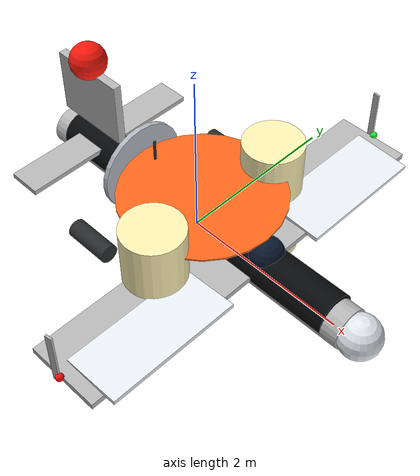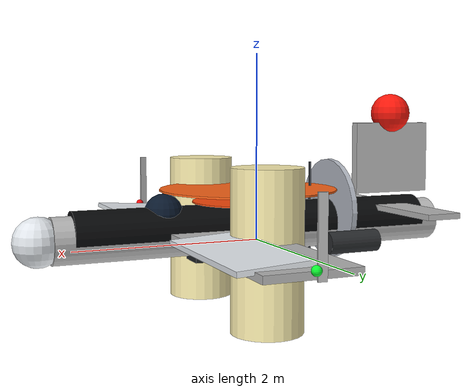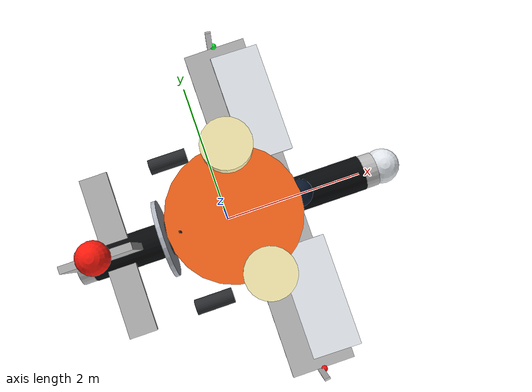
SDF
<?xml version="1.0"?>
<sdf version="1.7">

  <model name="target_marker">
    <static>false</static>
    <allow_auto_disable>false</allow_auto_disable>

    <link name="aircraft">

      <gravity>false</gravity>
      <kinematic>true</kinematic>
      <self_collide>false</self_collide>

      <!-- ============================================================
           FUSELAGE + NOSE
           ============================================================ -->
      <visual name="fuselage">
        <pose>0 0 0.12 0 1.570796 0</pose>
        <geometry><cylinder><radius>0.24</radius><length>4.4</length></cylinder></geometry>
        <material>
          <ambient>__RED__ __GREEN__ __BLUE__ 1</ambient>
          <diffuse>__RED__ __GREEN__ __BLUE__ 1</diffuse>
          <specular>0.75 0.75 0.75 1</specular>
        </material>
      </visual>

      <!-- Skin stripe along the upper fuselage -->
      <visual name="fuselage_stripe">
        <pose>0 0 0.16 0 1.570796 0</pose>
        <geometry><cylinder><radius>0.248</radius><length>4.0</length></cylinder></geometry>
        <material>
          <ambient>0.1 0.12 0.14 1</ambient>
          <diffuse>0.03 0.035 0.04 1</diffuse>
          <specular>0.5 0.5 0.5 1</specular>
        </material>
      </visual>

      <visual name="nose">
        <pose>2.32 0 0.12 0 0 0</pose>
        <geometry><sphere><radius>0.25</radius></sphere></geometry>
        <material>
          <ambient>0.78 0.8 0.82 1</ambient>
          <diffuse>0.9 0.92 0.94 1</diffuse>
          <specular>0.9 0.9 0.9 1</specular>
        </material>
      </visual>

      <!-- Cockpit canopy -->
      <visual name="canopy">
        <pose>1.05 0 0.34 0 0 0</pose>
        <geometry><sphere><radius>0.2</radius></sphere></geometry>
        <material>
          <ambient>0.03 0.07 0.12 1</ambient>
          <diffuse>0.04 0.1 0.18 1</diffuse>
          <specular>0.95 0.95 1 1</specular>
        </material>
      </visual>

      <!-- ============================================================
           MAIN WING
           ============================================================ -->
      <visual name="main_wing">
        <pose>0.6 0 0.12 0 0 0</pose>
        <geometry><box><size>0.9 4.8 0.07</size></box></geometry>
        <material>
          <ambient>__RED__ __GREEN__ __BLUE__ 1</ambient>
          <diffuse>__RED__ __GREEN__ __BLUE__ 1</diffuse>
          <specular>0.5 0.5 0.5 1</specular>
        </material>
      </visual>

      <!-- Leading-edge sweep highlight -->
      <visual name="sweep_left">
        <pose>0.85 1.45 0.165 0 0.06 0</pose>
        <geometry><box><size>0.7 1.6 0.05</size></box></geometry>
        <material>
          <ambient>0.85 0.87 0.9 1</ambient>
          <diffuse>0.92 0.94 0.96 1</diffuse>
        </material>
      </visual>
      <visual name="sweep_right">
        <pose>0.85 -1.45 0.165 0 -0.06 0</pose>
        <geometry><box><size>0.7 1.6 0.05</size></box></geometry>
        <material>
          <ambient>0.85 0.87 0.9 1</ambient>
          <diffuse>0.92 0.94 0.96 1</diffuse>
        </material>
      </visual>

      <!-- Winglets -->
      <visual name="winglet_left">
        <pose>0.55 2.42 0.42 0 0 -0.15</pose>
        <geometry><box><size>0.08 0.025 0.7</size></box></geometry>
        <material>
          <ambient>__RED__ __GREEN__ __BLUE__ 1</ambient>
          <diffuse>__RED__ __GREEN__ __BLUE__ 1</diffuse>
        </material>
      </visual>
      <visual name="winglet_right">
        <pose>0.55 -2.42 0.42 0 0 0.15</pose>
        <geometry><box><size>0.08 0.025 0.7</size></box></geometry>
        <material>
          <ambient>__RED__ __GREEN__ __BLUE__ 1</ambient>
          <diffuse>__RED__ __GREEN__ __BLUE__ 1</diffuse>
        </material>
      </visual>

      <!-- Wing nav beacons -->
      <visual name="wing_nav_left">
        <pose>0.6 2.42 0.16 0 0 0</pose>
        <geometry><sphere><radius>0.045</radius></sphere></geometry>
        <material>
          <ambient>0.05 1 0.2 1</ambient>
          <diffuse>0.05 1 0.2 1</diffuse>
          <emissive>0.05 0.8 0.15 1</emissive>
        </material>
      </visual>
      <visual name="wing_nav_right">
        <pose>0.6 -2.42 0.16 0 0 0</pose>
        <geometry><sphere><radius>0.045</radius></sphere></geometry>
        <material>
          <ambient>1 0.05 0.05 1</ambient>
          <diffuse>1 0.05 0.05 1</diffuse>
          <emissive>0.85 0.02 0.02 1</emissive>
        </material>
      </visual>

      <!-- ============================================================
           EMPENNAGE (tail)
           ============================================================ -->
      <visual name="tailplane">
        <pose>-1.6 0 0.3 0 0 0</pose>
        <geometry><box><size>0.4 2.3 0.06</size></box></geometry>
        <material>
          <ambient>__RED__ __GREEN__ __BLUE__ 1</ambient>
          <diffuse>__RED__ __GREEN__ __BLUE__ 1</diffuse>
        </material>
      </visual>
      <visual name="fin_top">
        <pose>-1.7 0 0.85 0 0 0</pose>
        <geometry><box><size>0.95 0.1 0.8</size></box></geometry>
        <material>
          <ambient>__RED__ __GREEN__ __BLUE__ 1</ambient>
          <diffuse>__RED__ __GREEN__ __BLUE__ 1</diffuse>
          <specular>0.3 0.3 0.3 1</specular>
        </material>
      </visual>
      <visual name="tail_boom">
        <pose>-1.1 0 0.3 0 0.15 0</pose>
        <geometry><box><size>0.6 0.06 0.06</size></box></geometry>
        <material><diffuse>0.2 0.22 0.24 1</diffuse></material>
      </visual>

      <!-- ============================================================
           PROPULSION (twin engine pods + pusher propeller)
           ============================================================ -->
      <visual name="engine_left">
        <pose>-0.55 1.05 0.1 0 1.570796 0</pose>
        <geometry><cylinder><radius>0.11</radius><length>0.55</length></cylinder></geometry>
        <material>
          <ambient>0.12 0.13 0.14 1</ambient>
          <diffuse>0.16 0.17 0.18 1</diffuse>
          <specular>0.6 0.6 0.6 1</specular>
        </material>
      </visual>
      <visual name="engine_right">
        <pose>-0.55 -1.05 0.1 0 1.570796 0</pose>
        <geometry><cylinder><radius>0.11</radius><length>0.55</length></cylinder></geometry>
        <material>
          <ambient>0.12 0.13 0.14 1</ambient>
          <diffuse>0.16 0.17 0.18 1</diffuse>
          <specular>0.6 0.6 0.6 1</specular>
        </material>
      </visual>

      <!-- Spinning-style pusher prop behind the wing -->
      <visual name="prop_disc">
        <pose>-0.9 0 0.3 0 1.570796 0</pose>
        <geometry><cylinder><radius>0.55</radius><length>0.06</length></cylinder></geometry>
        <material>
          <ambient>0.6 0.62 0.66 1</ambient>
          <diffuse>0.7 0.72 0.76 1</diffuse>
          <transparency>0.6</transparency>
        </material>
      </visual>
      <visual name="prop_blade_a">
        <pose>-0.65 0 0.3 0 1.570796 0.0</pose>
        <geometry><box><size>1.05 0.03 0.015</size></box></geometry>
        <material><diffuse>0.3 0.32 0.35 1</diffuse></material>
      </visual>
      <visual name="prop_blade_b">
        <pose>-0.65 0 0.3 0 1.570796 0.785</pose>
        <geometry><box><size>1.05 0.02 0.015</size></box></geometry>
        <material><diffuse>0.3 0.32 0.35 1</diffuse></material>
      </visual>
      <visual name="prop_spinner">
        <pose>-0.62 0 0.3 0 0 0</pose>
        <geometry><sphere><radius>0.06</radius></sphere></geometry>
        <material><diffuse>0.1 0.1 0.11 1</diffuse><specular>0.9 0.9 0.9 1</specular></material>
      </visual>

      <!-- ============================================================
           LIGHTS + TARGET BEACON
           ============================================================ -->
      <!-- Big glowing target ring on the spine -->
      <visual name="target_ring">
        <pose>0.1 0 0.42 0 0 0</pose>
        <geometry><cylinder><radius>0.6</radius><length>0.015</length></cylinder></geometry>
        <material>
          <ambient>1 0.25 0.05 1</ambient>
          <diffuse>1 0.3 0.05 1</diffuse>
          <emissive>1 0.3 0.05 1</emissive>
          <lighting>false</lighting>
        </material>
      </visual>

      <!-- Translucent halo above the ring -->
      <visual name="target_halo">
        <pose>0.1 0 0.55 0 0 0</pose>
        <geometry><cylinder><radius>0.95</radius><length>0.02</length></cylinder></geometry>
        <material>
          <ambient>1 0.4 0.1 1</ambient>
          <diffuse>1 0.4 0.1 1</diffuse>
          <emissive>0.9 0.35 0.08 1</emissive>
          <lighting>false</lighting>
          <transparency>0.4</transparency>
        </material>
      </visual>

      <!-- Anti-collision strobe on the fin -->
      <visual name="strobe_mast">
        <pose>-1.7 0 1.28 0 0 0</pose>
        <geometry><cylinder><radius>0.012</radius><length>0.12</length></cylinder></geometry>
        <material><diffuse>0.05 0.05 0.05 1</diffuse></material>
      </visual>
      <visual name="strobe_light">
        <pose>-1.7 0 1.36 0 0 0</pose>
        <geometry><sphere><radius>0.055</radius></sphere></geometry>
        <material>
          <ambient>1 0.03 0.02 1</ambient>
          <diffuse>1 0.04 0.02 1</diffuse>
          <emissive>1 0.02 0.01 1</emissive>
        </material>
      </visual>
      <visual name="strobe_halo">
        <pose>-1.7 0 1.36 0 0 0</pose>
        <geometry><sphere><radius>0.22</radius></sphere></geometry>
        <material>
          <ambient>1 0.1 0.05 1</ambient>
          <diffuse>1 0.1 0.05 1</diffuse>
          <emissive>0.8 0.1 0.04 1</emissive>
          <lighting>false</lighting>
          <transparency>0.55</transparency>
        </material>
      </visual>

      <!-- Landing-light spill cones (visible from the ground) -->
      <visual name="landing_beam_left">
        <pose>0.3 0.9 0.05 0 3.14 0</pose>
        <geometry><cylinder><radius>0.36</radius><length>1.6</length></cylinder></geometry>
        <material>
          <ambient>1 0.95 0.7 1</ambient>
          <diffuse>1 0.95 0.7 1</diffuse>
          <emissive>0.9 0.85 0.6 1</emissive>
          <lighting>false</lighting>
          <transparency>0.7</transparency>
        </material>
      </visual>
      <visual name="landing_beam_right">
        <pose>0.3 -0.9 0.05 0 3.14 0</pose>
        <geometry><cylinder><radius>0.36</radius><length>1.6</length></cylinder></geometry>
        <material>
          <ambient>1 0.95 0.7 1</ambient>
          <diffuse>1 0.95 0.7 1</diffuse>
          <emissive>0.9 0.85 0.6 1</emissive>
          <lighting>false</lighting>
          <transparency>0.7</transparency>
        </material>
      </visual>

      <!-- Nose lamp -->
      <visual name="nose_lamp">
        <pose>2.28 0 -0.02 0 0 0</pose>
        <geometry><sphere><radius>0.055</radius></sphere></geometry>
        <material>
          <ambient>1 0.98 0.8 1</ambient>
          <diffuse>1 0.98 0.8 1</diffuse>
          <emissive>0.9 0.88 0.7 1</emissive>
        </material>
      </visual>

      <!-- Belly turret look / landing strut -->
      <visual name="belly_pod">
        <pose>0.4 0 -0.12 0 0 0</pose>
        <geometry><box><size>0.7 0.3 0.12</size></box></geometry>
        <material><diffuse>0.12 0.13 0.14 1</diffuse></material>
      </visual>

      <!-- Compact collision body -->
      <collision name="collision">
        <geometry><box><size>5.0 4.9 1.9</size></box></geometry>
        <surface>
          <friction><ode><mu>0</mu><mu2>0</mu2></ode></friction>
        </surface>
      </collision>

    </link>
  </model>
</sdf>
